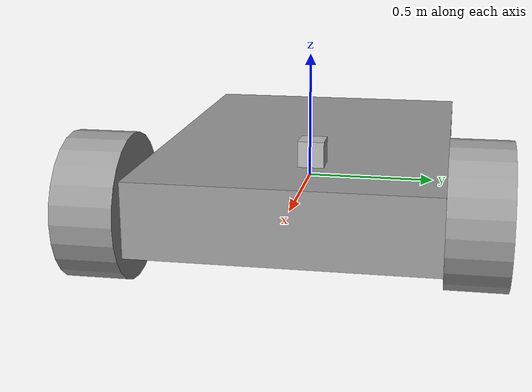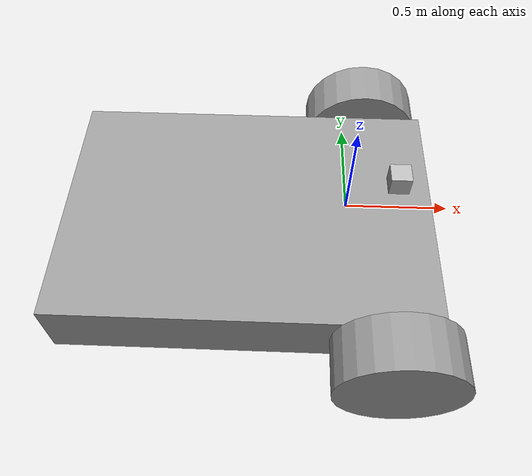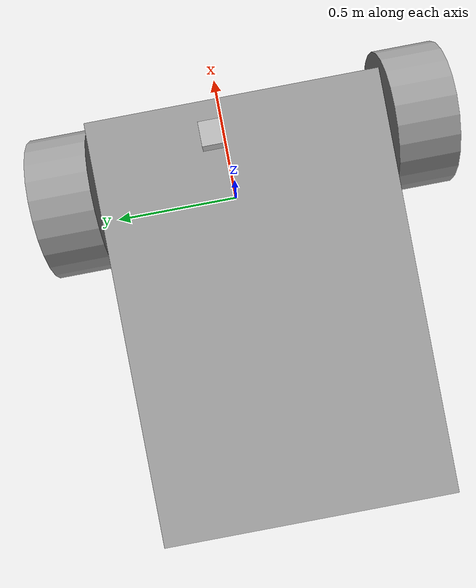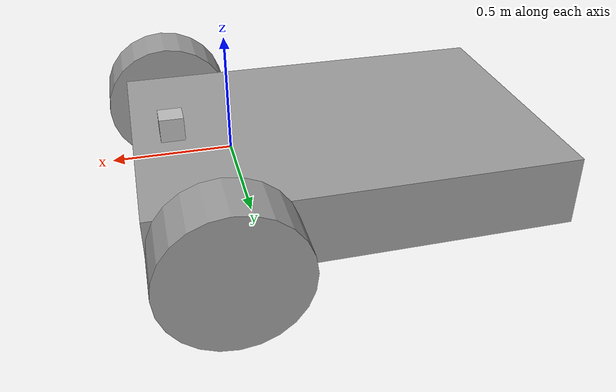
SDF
<?xml version='1.0'?>
<sdf version='1.7'>
  <model name='robocar'>
    <model name='robocar_depthsensor'>
      <link name='link_0'>
        <inertial>
          <mass>0.690725</mass>
          <inertia>
            <ixx>0.0940952</ixx>
            <ixy>0</ixy>
            <ixz>0</ixz>
            <iyy>0.189444</iyy>
            <iyz>0</iyz>
            <izz>0.272356</izz>
          </inertia>
          <pose>0 0 0.4 0 -0 0</pose>
        </inertial>
        <pose>-0.235599 -0.012092 0.007461 0 -0 0</pose>
        <gravity>1</gravity>
        <self_collide>0</self_collide>
        <kinematic>0</kinematic>
        <enable_wind>0</enable_wind>
        <visual name='visual'>
          <pose>0 0 0 0 -0 0</pose>
          <geometry>
            <box>
              <size>1.7872 1.23999 0.311683</size>
            </box>
          </geometry>
          <material>
            <lighting>1</lighting>
            <script>
              <uri>file://media/materials/scripts/gazebo.material</uri>
              <name>Gazebo/Grey</name>
            </script>
            <shader type='pixel'>
              <normal_map>__default__</normal_map>
            </shader>
            <ambient>0.3 0.3 0.3 1</ambient>
            <diffuse>0.7 0.7 0.7 1</diffuse>
            <specular>0.01 0.01 0.01 1</specular>
            <emissive>0 0 0 1</emissive>
          </material>
          <transparency>0</transparency>
          <cast_shadows>1</cast_shadows>
        </visual>
        <collision name='collision'>
          <laser_retro>0</laser_retro>
          <max_contacts>10</max_contacts>
          <pose>0 0 0 0 -0 0</pose>
          <geometry>
            <box>
              <size>1.7872 1.23999 0.311683</size>
            </box>
          </geometry>
          <surface>
            <friction>
              <ode>
                <mu>1</mu>
                <mu2>1</mu2>
                <fdir1>0 0 0</fdir1>
                <slip1>0</slip1>
                <slip2>0</slip2>
              </ode>
              <torsional>
                <coefficient>1</coefficient>
                <patch_radius>0</patch_radius>
                <surface_radius>0</surface_radius>
                <use_patch_radius>1</use_patch_radius>
                <ode>
                  <slip>0</slip>
                </ode>
              </torsional>
            </friction>
            <bounce>
              <restitution_coefficient>0</restitution_coefficient>
              <threshold>1e+06</threshold>
            </bounce>
            <contact>
              <collide_without_contact>0</collide_without_contact>
              <collide_without_contact_bitmask>1</collide_without_contact_bitmask>
              <collide_bitmask>1</collide_bitmask>
              <ode>
                <soft_cfm>0</soft_cfm>
                <soft_erp>0.2</soft_erp>
                <kp>1e+13</kp>
                <kd>1</kd>
                <max_vel>0.01</max_vel>
                <min_depth>0</min_depth>
              </ode>
              <bullet>
                <split_impulse>1</split_impulse>
                <split_impulse_penetration_threshold>-0.01</split_impulse_penetration_threshold>
                <soft_cfm>0</soft_cfm>
                <soft_erp>0.2</soft_erp>
                <kp>1e+13</kp>
                <kd>1</kd>
              </bullet>
            </contact>
          </surface>
        </collision>
      </link>
      <link name='link_2'>
        <inertial>
          <mass>0.0980454</mass>
          <inertia>
            <ixx>0.00296953</ixx>
            <ixy>0</ixy>
            <ixz>0</ixz>
            <iyy>0.00296953</iyy>
            <iyz>0</iyz>
            <izz>0.00499228</izz>
          </inertia>
          <pose>0 0 0 0 -0 0</pose>
        </inertial>
        <pose>0.458003 -0.757086 0.007461 1.5708 -0 0</pose>
        <gravity>1</gravity>
        <self_collide>0</self_collide>
        <kinematic>0</kinematic>
        <enable_wind>0</enable_wind>
        <visual name='visual'>
          <pose>0 0 0 0 -0 0</pose>
          <geometry>
            <cylinder>
              <radius>0.3</radius>
              <length>0.25</length>
            </cylinder>
          </geometry>
          <material>
            <lighting>1</lighting>
            <script>
              <uri>file://media/materials/scripts/gazebo.material</uri>
              <name>Gazebo/Grey</name>
            </script>
            <shader type='pixel'>
              <normal_map>__default__</normal_map>
            </shader>
            <ambient>0.3 0.3 0.3 1</ambient>
            <diffuse>0.7 0.7 0.7 1</diffuse>
            <specular>0.01 0.01 0.01 1</specular>
            <emissive>0 0 0 1</emissive>
          </material>
          <transparency>0</transparency>
          <cast_shadows>1</cast_shadows>
        </visual>
        <collision name='collision'>
          <laser_retro>0</laser_retro>
          <max_contacts>10</max_contacts>
          <pose>0 0 0 0 -0 0</pose>
          <geometry>
            <cylinder>
              <radius>0.3</radius>
              <length>0.25</length>
            </cylinder>
          </geometry>
          <surface>
            <friction>
              <ode>
                <mu>1</mu>
                <mu2>1</mu2>
                <fdir1>0 0 0</fdir1>
                <slip1>0</slip1>
                <slip2>0</slip2>
              </ode>
              <torsional>
                <coefficient>1</coefficient>
                <patch_radius>0</patch_radius>
                <surface_radius>0</surface_radius>
                <use_patch_radius>1</use_patch_radius>
                <ode>
                  <slip>0</slip>
                </ode>
              </torsional>
            </friction>
            <bounce>
              <restitution_coefficient>0</restitution_coefficient>
              <threshold>1e+06</threshold>
            </bounce>
            <contact>
              <collide_without_contact>0</collide_without_contact>
              <collide_without_contact_bitmask>1</collide_without_contact_bitmask>
              <collide_bitmask>1</collide_bitmask>
              <ode>
                <soft_cfm>0</soft_cfm>
                <soft_erp>0.2</soft_erp>
                <kp>1e+13</kp>
                <kd>1</kd>
                <max_vel>0.01</max_vel>
                <min_depth>0</min_depth>
              </ode>
              <bullet>
                <split_impulse>1</split_impulse>
                <split_impulse_penetration_threshold>-0.01</split_impulse_penetration_threshold>
                <soft_cfm>0</soft_cfm>
                <soft_erp>0.2</soft_erp>
                <kp>1e+13</kp>
                <kd>1</kd>
              </bullet>
            </contact>
          </surface>
        </collision>
      </link>
      <link name='link_2_clone'>
        <inertial>
          <mass>0.0980454</mass>
          <inertia>
            <ixx>0.00296953</ixx>
            <ixy>0</ixy>
            <ixz>0</ixz>
            <iyy>0.00296953</iyy>
            <iyz>0</iyz>
            <izz>0.00499228</izz>
          </inertia>
          <pose>0 0 0 0 -0 0</pose>
        </inertial>
        <pose>0.358003 0.732902 0.007461 1.5708 -0 0</pose>
        <gravity>1</gravity>
        <self_collide>0</self_collide>
        <kinematic>0</kinematic>
        <enable_wind>0</enable_wind>
        <visual name='visual'>
          <pose>0 0 0 0 -0 0</pose>
          <geometry>
            <cylinder>
              <radius>0.3</radius>
              <length>0.25</length>
            </cylinder>
          </geometry>
          <material>
            <lighting>1</lighting>
            <script>
              <uri>file://media/materials/scripts/gazebo.material</uri>
              <name>Gazebo/Grey</name>
            </script>
            <shader type='pixel'>
              <normal_map>__default__</normal_map>
            </shader>
            <ambient>0.3 0.3 0.3 1</ambient>
            <diffuse>0.7 0.7 0.7 1</diffuse>
            <specular>0.01 0.01 0.01 1</specular>
            <emissive>0 0 0 1</emissive>
          </material>
          <transparency>0</transparency>
          <cast_shadows>1</cast_shadows>
        </visual>
        <collision name='collision'>
          <laser_retro>0</laser_retro>
          <max_contacts>10</max_contacts>
          <pose>0 0 0 0 -0 0</pose>
          <geometry>
            <cylinder>
              <radius>0.3</radius>
              <length>0.25</length>
            </cylinder>
          </geometry>
          <surface>
            <friction>
              <ode>
                <mu>1</mu>
                <mu2>1</mu2>
                <fdir1>0 0 0</fdir1>
                <slip1>0</slip1>
                <slip2>0</slip2>
              </ode>
              <torsional>
                <coefficient>1</coefficient>
                <patch_radius>0</patch_radius>
                <surface_radius>0</surface_radius>
                <use_patch_radius>1</use_patch_radius>
                <ode>
                  <slip>0</slip>
                </ode>
              </torsional>
            </friction>
            <bounce>
              <restitution_coefficient>0</restitution_coefficient>
              <threshold>1e+06</threshold>
            </bounce>
            <contact>
              <collide_without_contact>0</collide_without_contact>
              <collide_without_contact_bitmask>1</collide_without_contact_bitmask>
              <collide_bitmask>1</collide_bitmask>
              <ode>
                <soft_cfm>0</soft_cfm>
                <soft_erp>0.2</soft_erp>
                <kp>1e+13</kp>
                <kd>1</kd>
                <max_vel>0.01</max_vel>
                <min_depth>0</min_depth>
              </ode>
              <bullet>
                <split_impulse>1</split_impulse>
                <split_impulse_penetration_threshold>-0.01</split_impulse_penetration_threshold>
                <soft_cfm>0</soft_cfm>
                <soft_erp>0.2</soft_erp>
                <kp>1e+13</kp>
                <kd>1</kd>
              </bullet>
            </contact>
          </surface>
        </collision>
      </link>
      <link name='link_3'>
        <inertial>
          <mass>1</mass>
          <inertia>
            <ixx>0.1</ixx>
            <ixy>0</ixy>
            <ixz>0</ixz>
            <iyy>0.1</iyy>
            <iyz>0</iyz>
            <izz>0.1</izz>
          </inertia>
          <pose>0 0 0 0 -0 0</pose>
        </inertial>
        <pose>-0.929201 -0.012092 -0.036698 0 -0 0</pose>
        <gravity>1</gravity>
        <self_collide>0</self_collide>
        <kinematic>0</kinematic>
        <enable_wind>0</enable_wind>
        <visual name='visual'>
          <pose>0 0 0 0 -0 0</pose>
          <geometry>
            <sphere>
              <radius>0.2</radius>
            </sphere>
          </geometry>
          <material>
            <lighting>1</lighting>
            <script>
              <uri>file://media/materials/scripts/gazebo.material</uri>
              <name>Gazebo/Grey</name>
            </script>
            <shader type='pixel'>
              <normal_map>__default__</normal_map>
            </shader>
            <ambient>0.3 0.3 0.3 1</ambient>
            <diffuse>0.7 0.7 0.7 1</diffuse>
            <specular>0.01 0.01 0.01 1</specular>
            <emissive>0 0 0 1</emissive>
          </material>
          <transparency>0</transparency>
          <cast_shadows>1</cast_shadows>
        </visual>
        <collision name='collision'>
          <laser_retro>0</laser_retro>
          <max_contacts>10</max_contacts>
          <pose>0 0 0 0 -0 0</pose>
          <geometry>
            <sphere>
              <radius>0.2</radius>
            </sphere>
          </geometry>
          <surface>
            <friction>
              <ode>
                <mu>1</mu>
                <mu2>1</mu2>
                <fdir1>0 0 0</fdir1>
                <slip1>0</slip1>
                <slip2>0</slip2>
              </ode>
              <torsional>
                <coefficient>1</coefficient>
                <patch_radius>0</patch_radius>
                <surface_radius>0</surface_radius>
                <use_patch_radius>1</use_patch_radius>
                <ode>
                  <slip>0</slip>
                </ode>
              </torsional>
            </friction>
            <bounce>
              <restitution_coefficient>0</restitution_coefficient>
              <threshold>1e+06</threshold>
            </bounce>
            <contact>
              <collide_without_contact>0</collide_without_contact>
              <collide_without_contact_bitmask>1</collide_without_contact_bitmask>
              <collide_bitmask>1</collide_bitmask>
              <ode>
                <soft_cfm>0</soft_cfm>
                <soft_erp>0.2</soft_erp>
                <kp>1e+13</kp>
                <kd>1</kd>
                <max_vel>0.01</max_vel>
                <min_depth>0</min_depth>
              </ode>
              <bullet>
                <split_impulse>1</split_impulse>
                <split_impulse_penetration_threshold>-0.01</split_impulse_penetration_threshold>
                <soft_cfm>0</soft_cfm>
                <soft_erp>0.2</soft_erp>
                <kp>1e+13</kp>
                <kd>1</kd>
              </bullet>
            </contact>
          </surface>
        </collision>
      </link>
      <model name='depth_camera'>
        <link name='link'>
          <pose>0 0 0.05 0 -0 0</pose>
          <inertial>
            <mass>0.1</mass>
            <inertia>
              <ixx>0.000166667</ixx>
              <iyy>0.000166667</iyy>
              <izz>0.000166667</izz>
              <ixy>0</ixy>
              <ixz>0</ixz>
              <iyz>0</iyz>
            </inertia>
          </inertial>
          <collision name='collision'>
            <geometry>
              <box>
                <size>0.1 0.1 0.1</size>
              </box>
            </geometry>
          </collision>
          <visual name='visual'>
            <geometry>
              <box>
                <size>0.1 0.1 0.1</size>
              </box>
            </geometry>
          </visual>
          <sensor name='camera' type='depth'>
            <camera>
              <horizontal_fov>1.047</horizontal_fov>
              <image>
                <width>320</width>
                <height>240</height>
              </image>
              <clip>
                <near>0.1</near>
                <far>100</far>
              </clip>
            </camera>
            <always_on>1</always_on>
            <update_rate>30</update_rate>
            <visualize>1</visualize>
          </sensor>
        </link>
        <pose>0.348794 0.048368 0.014316 0 -0 0</pose>
      </model>
      <joint name='link_0_JOINT_0' type='revolute'>
        <parent>link_0</parent>
        <child>link_2</child>
        <pose>0 0 0 0 -0 0</pose>
        <axis>
          <xyz>0 0 1</xyz>
          <limit>
            <lower>-1.79769e+308</lower>
            <upper>1.79769e+308</upper>
            <effort>-1</effort>
            <velocity>-1</velocity>
          </limit>
          <dynamics>
            <spring_reference>0</spring_reference>
            <spring_stiffness>0</spring_stiffness>
            <damping>0</damping>
          </dynamics>
        </axis>
        <physics>
          <ode>
            <limit>
              <cfm>0</cfm>
              <erp>0.2</erp>
            </limit>
            <suspension>
              <cfm>0</cfm>
              <erp>0.2</erp>
            </suspension>
          </ode>
        </physics>
      </joint>
      <joint name='link_0_JOINT_1' type='revolute'>
        <parent>link_0</parent>
        <child>link_2_clone</child>
        <pose>0 0 0 0 -0 0</pose>
        <axis>
          <xyz>0 0 1</xyz>
          <limit>
            <lower>-1.79769e+308</lower>
            <upper>1.79769e+308</upper>
            <effort>-1</effort>
            <velocity>-1</velocity>
          </limit>
          <dynamics>
            <spring_reference>0</spring_reference>
            <spring_stiffness>0</spring_stiffness>
            <damping>0</damping>
          </dynamics>
        </axis>
        <physics>
          <ode>
            <limit>
              <cfm>0</cfm>
              <erp>0.2</erp>
            </limit>
            <suspension>
              <cfm>0</cfm>
              <erp>0.2</erp>
            </suspension>
          </ode>
        </physics>
      </joint>
      <joint name='link_0_JOINT_2' type='ball'>
        <parent>link_0</parent>
        <child>link_3</child>
        <pose>0 0 0 0 -0 0</pose>
        <physics>
          <ode>
            <limit>
              <cfm>0</cfm>
              <erp>0.2</erp>
            </limit>
            <suspension>
              <cfm>0</cfm>
              <erp>0.2</erp>
            </suspension>
          </ode>
        </physics>
      </joint>
      <joint name='link_0_JOINT_4' type='fixed'>
        <parent>link_0</parent>
        <child>depth_camera::link</child>
        <pose>0 0 0 -0.01 -0.02 -0</pose>
        <physics>
          <ode>
            <limit>
              <cfm>0</cfm>
              <erp>0.2</erp>
            </limit>
            <suspension>
              <cfm>0</cfm>
              <erp>0.2</erp>
            </suspension>
          </ode>
        </physics>
      </joint>
      <static>0</static>
      <allow_auto_disable>1</allow_auto_disable>
      <plugin name='follower' filename='libFollowerPlugin.so'/>
      <pose>-0.245185 -0.04624 -0.11093 0 -0 0</pose>
    </model>
    <model name='depth_camera'>
      <link name='link'>
        <pose>0 0 0.05 0 -0 0</pose>
        <inertial>
          <mass>0.1</mass>
          <inertia>
            <ixx>0.000166667</ixx>
            <iyy>0.000166667</iyy>
            <izz>0.000166667</izz>
            <ixy>0</ixy>
            <ixz>0</ixz>
            <iyz>0</iyz>
          </inertia>
        </inertial>
        <collision name='collision'>
          <geometry>
            <box>
              <size>0.1 0.1 0.1</size>
            </box>
          </geometry>
        </collision>
        <visual name='visual'>
          <geometry>
            <box>
              <size>0.1 0.1 0.1</size>
            </box>
          </geometry>
        </visual>
        <sensor name='camera' type='depth'>
          <camera>
            <horizontal_fov>1.047</horizontal_fov>
            <image>
              <width>320</width>
              <height>240</height>
            </image>
            <clip>
              <near>0.1</near>
              <far>100</far>
            </clip>
          </camera>
          <always_on>1</always_on>
          <update_rate>30</update_rate>
          <visualize>1</visualize>
        </sensor>
      </link>
      <pose>0.245186 0.04624 0.11093 0 -0 0</pose>
    </model>
    <joint name='link_0_JOINT_0' type='fixed'>
      <parent>robocar_depthsensor::link_0</parent>
      <child>depth_camera::link</child>
      <pose>0 0 0 0 -0 0</pose>
      <physics>
        <ode>
          <limit>
            <cfm>0</cfm>
            <erp>0.2</erp>
          </limit>
          <suspension>
            <cfm>0</cfm>
            <erp>0.2</erp>
          </suspension>
        </ode>
      </physics>
    </joint>
    <static>0</static>
    <allow_auto_disable>1</allow_auto_disable>
  </model>
</sdf>
